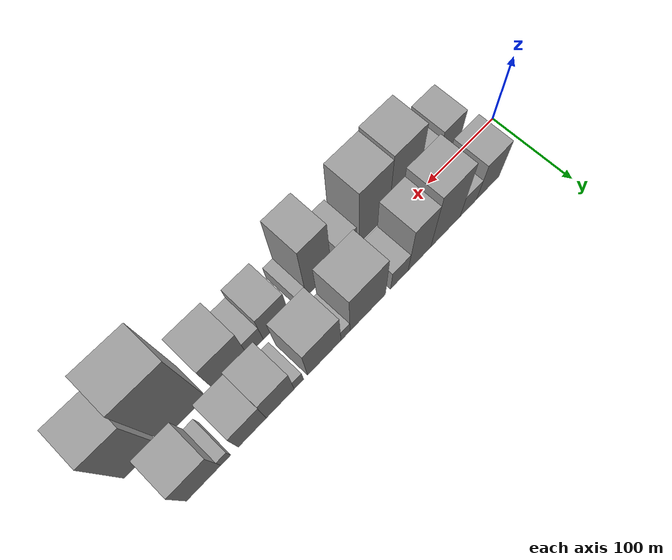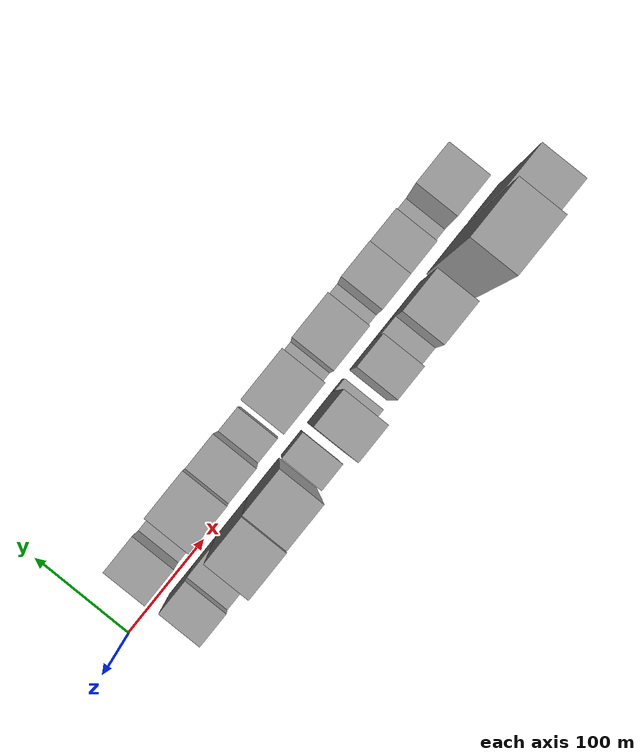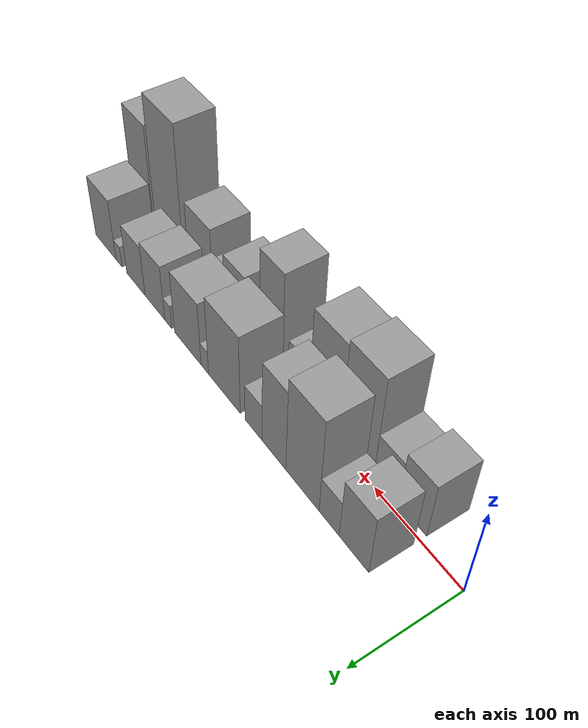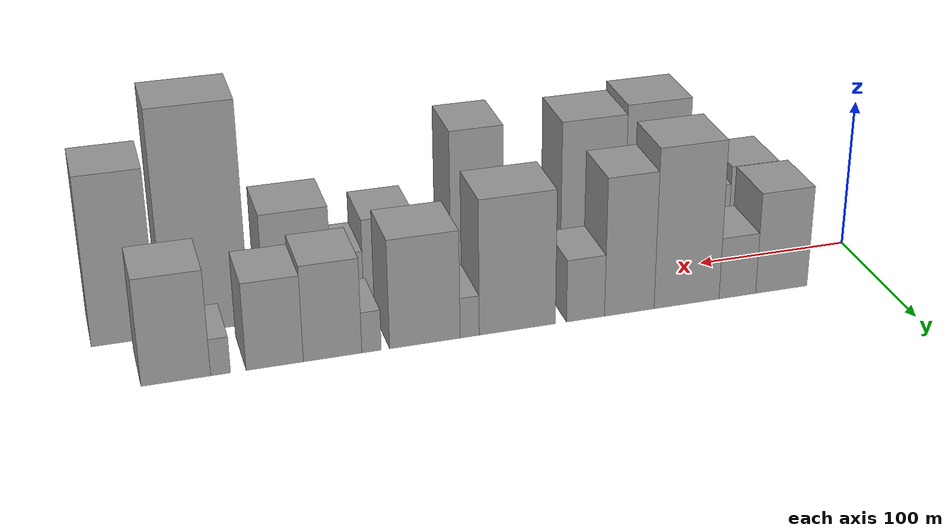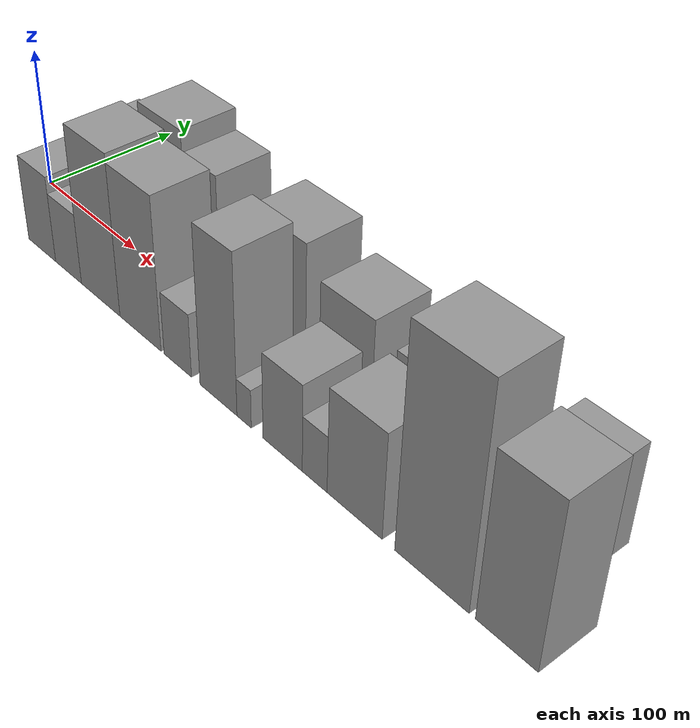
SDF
<sdf version="1.6">
 <world name="default">
  <scene>
   <sky><clouds><speed>12</speed></clouds></sky>
   <ambient>0.4 0.4 0.4 1</ambient>
   <background>0.7 0.7 0.7 1</background>
   <shadows>1</shadows>
  </scene>
  <gravity>0 0 -9.8066</gravity>
  <magnetic_field>6e-06 2.3e-05 -4.2e-05</magnetic_field>
  <physics default="0" name="default_physics" type="ode">
   <ode>
    <solver>
     <type>quick</type>
     <iters>10</iters>
     <sor>1.0</sor>
     <use_dynamic_moi_rescaling>0</use_dynamic_moi_rescaling>
    </solver>
    <constraints>
     <cfm>0</cfm>
     <erp>0.2</erp>
     <contact_max_correcting_vel>100</contact_max_correcting_vel>
     <contact_surface_layer>0.001</contact_surface_layer>
    </constraints>
   </ode>
   <max_step_size>0.004</max_step_size>
   <real_time_factor>1</real_time_factor>
   <real_time_update_rate>250</real_time_update_rate>
  </physics>
  <light name="sun" type="directional">
   <pose>0 0 10 0 0 0</pose>
   <diffuse>0.8 0.8 0.8 1</diffuse>
   <specular>0.2 0.2 0.2 1</specular>
   <attenuation>
    <range>1000</range>
    <constant>0.9</constant>
    <linear>0.01</linear>
    <quadratic>0.001</quadratic>
   </attenuation>
   <direction>-0.5 0.1 -0.9</direction>
  </light>
  <model name="building_1">
   <static>1</static>
   <pose>64.3945 26.0000 0 0.000000 0.000000 1.570796</pose>
   <link name="link">
    <pose>0 0 34.50 0 0 0</pose>
    <collision name="collision"><geometry><box><size>40.0000 34.7891 69.0000</size></box></geometry></collision>
    <visual name="visual">
     <cast_shadows>0</cast_shadows>
     <geometry><box><size>40.0000 34.7891 69.0000</size></box></geometry>
     <material>
      <script>
       <uri>model://grey_wall/materials/scripts</uri>
       <uri>model://grey_wall/materials/textures</uri>
       <name>vrc/grey_wall</name>
      </script>
     </material>
    </visual>
   </link>
  </model>
  <model name="building_2">
   <static>1</static>
   <pose>94.0296 26.0000 0 0.000000 0.000000 1.570796</pose>
   <link name="link">
    <pose>0 0 21.00 0 0 0</pose>
    <collision name="collision"><geometry><box><size>40.0000 24.4811 42.0000</size></box></geometry></collision>
    <visual name="visual">
     <cast_shadows>0</cast_shadows>
     <geometry><box><size>40.0000 24.4811 42.0000</size></box></geometry>
     <material>
      <script>
       <uri>model://grey_wall/materials/scripts</uri>
       <uri>model://grey_wall/materials/textures</uri>
       <name>vrc/grey_wall</name>
      </script>
     </material>
    </visual>
   </link>
  </model>
  <model name="building_3">
   <static>1</static>
   <pose>127.7271 26.0000 0 0.000000 0.000000 1.570796</pose>
   <link name="link">
    <pose>0 0 54.00 0 0 0</pose>
    <collision name="collision"><geometry><box><size>40.0000 42.9138 108.0000</size></box></geometry></collision>
    <visual name="visual">
     <cast_shadows>0</cast_shadows>
     <geometry><box><size>40.0000 42.9138 108.0000</size></box></geometry>
     <material>
      <script>
       <uri>model://grey_wall/materials/scripts</uri>
       <uri>model://grey_wall/materials/textures</uri>
       <name>vrc/grey_wall</name>
      </script>
     </material>
    </visual>
   </link>
  </model>
  <model name="building_4">
   <static>1</static>
   <pose>165.2172 26.0000 0 0.000000 0.000000 1.570796</pose>
   <link name="link">
    <pose>0 0 46.50 0 0 0</pose>
    <collision name="collision"><geometry><box><size>40.0000 32.0664 93.0000</size></box></geometry></collision>
    <visual name="visual">
     <cast_shadows>0</cast_shadows>
     <geometry><box><size>40.0000 32.0664 93.0000</size></box></geometry>
     <material>
      <script>
       <uri>model://grey_wall/materials/scripts</uri>
       <uri>model://grey_wall/materials/textures</uri>
       <name>vrc/grey_wall</name>
      </script>
     </material>
    </visual>
   </link>
  </model>
  <model name="building_5">
   <static>1</static>
   <pose>193.4105 26.0000 0 0.000000 0.000000 1.570796</pose>
   <link name="link">
    <pose>0 0 21.00 0 0 0</pose>
    <collision name="collision"><geometry><box><size>40.0000 24.3203 42.0000</size></box></geometry></collision>
    <visual name="visual">
     <cast_shadows>0</cast_shadows>
     <geometry><box><size>40.0000 24.3203 42.0000</size></box></geometry>
     <material>
      <script>
       <uri>model://grey_wall/materials/scripts</uri>
       <uri>model://grey_wall/materials/textures</uri>
       <name>vrc/grey_wall</name>
      </script>
     </material>
    </visual>
   </link>
  </model>
  <model name="building_6">
   <static>1</static>
   <pose>236.4170 26.0000 0 0.000000 0.000000 1.570796</pose>
   <link name="link">
    <pose>0 0 45.00 0 0 0</pose>
    <collision name="collision"><geometry><box><size>40.0000 47.6927 90.0000</size></box></geometry></collision>
    <visual name="visual">
     <cast_shadows>0</cast_shadows>
     <geometry><box><size>40.0000 47.6927 90.0000</size></box></geometry>
     <material>
      <script>
       <uri>model://grey_wall/materials/scripts</uri>
       <uri>model://grey_wall/materials/textures</uri>
       <name>vrc/grey_wall</name>
      </script>
     </material>
    </visual>
   </link>
  </model>
  <model name="building_7">
   <static>1</static>
   <pose>266.1805 26.0000 0 0.000000 0.000000 1.570796</pose>
   <link name="link">
    <pose>0 0 13.50 0 0 0</pose>
    <collision name="collision"><geometry><box><size>40.0000 11.8342 27.0000</size></box></geometry></collision>
    <visual name="visual">
     <cast_shadows>0</cast_shadows>
     <geometry><box><size>40.0000 11.8342 27.0000</size></box></geometry>
     <material>
      <script>
       <uri>model://grey_wall/materials/scripts</uri>
       <uri>model://grey_wall/materials/textures</uri>
       <name>vrc/grey_wall</name>
      </script>
     </material>
    </visual>
   </link>
  </model>
  <model name="building_8">
   <static>1</static>
   <pose>293.5687 26.0000 0 0.000000 0.000000 1.570796</pose>
   <link name="link">
    <pose>0 0 36.00 0 0 0</pose>
    <collision name="collision"><geometry><box><size>40.0000 42.9422 72.0000</size></box></geometry></collision>
    <visual name="visual">
     <cast_shadows>0</cast_shadows>
     <geometry><box><size>40.0000 42.9422 72.0000</size></box></geometry>
     <material>
      <script>
       <uri>model://grey_wall/materials/scripts</uri>
       <uri>model://grey_wall/materials/textures</uri>
       <name>vrc/grey_wall</name>
      </script>
     </material>
    </visual>
   </link>
  </model>
  <model name="building_9">
   <static>1</static>
   <pose>325.8712 26.0000 0 0.000000 0.000000 1.570796</pose>
   <link name="link">
    <pose>0 0 13.50 0 0 0</pose>
    <collision name="collision"><geometry><box><size>40.0000 11.6629 27.0000</size></box></geometry></collision>
    <visual name="visual">
     <cast_shadows>0</cast_shadows>
     <geometry><box><size>40.0000 11.6629 27.0000</size></box></geometry>
     <material>
      <script>
       <uri>model://grey_wall/materials/scripts</uri>
       <uri>model://grey_wall/materials/textures</uri>
       <name>vrc/grey_wall</name>
      </script>
     </material>
    </visual>
   </link>
  </model>
  <model name="building_10">
   <static>1</static>
   <pose>349.0239 26.0000 0 0.000000 0.000000 1.570796</pose>
   <link name="link">
    <pose>0 0 31.50 0 0 0</pose>
    <collision name="collision"><geometry><box><size>40.0000 34.6425 63.0000</size></box></geometry></collision>
    <visual name="visual">
     <cast_shadows>0</cast_shadows>
     <geometry><box><size>40.0000 34.6425 63.0000</size></box></geometry>
     <material>
      <script>
       <uri>model://grey_wall/materials/scripts</uri>
       <uri>model://grey_wall/materials/textures</uri>
       <name>vrc/grey_wall</name>
      </script>
     </material>
    </visual>
   </link>
  </model>
  <model name="building_11">
   <static>1</static>
   <pose>383.0467 26.0000 0 0.000000 0.000000 1.570796</pose>
   <link name="link">
    <pose>0 0 28.50 0 0 0</pose>
    <collision name="collision"><geometry><box><size>40.0000 33.4032 57.0000</size></box></geometry></collision>
    <visual name="visual">
     <cast_shadows>0</cast_shadows>
     <geometry><box><size>40.0000 33.4032 57.0000</size></box></geometry>
     <material>
      <script>
       <uri>model://grey_wall/materials/scripts</uri>
       <uri>model://grey_wall/materials/textures</uri>
       <name>vrc/grey_wall</name>
      </script>
     </material>
    </visual>
   </link>
  </model>
  <model name="building_12">
   <static>1</static>
   <pose>414.4743 26.0000 0 0.000000 0.000000 1.570796</pose>
   <link name="link">
    <pose>0 0 12.00 0 0 0</pose>
    <collision name="collision"><geometry><box><size>40.0000 11.4518 24.0000</size></box></geometry></collision>
    <visual name="visual">
     <cast_shadows>0</cast_shadows>
     <geometry><box><size>40.0000 11.4518 24.0000</size></box></geometry>
     <material>
      <script>
       <uri>model://grey_wall/materials/scripts</uri>
       <uri>model://grey_wall/materials/textures</uri>
       <name>vrc/grey_wall</name>
      </script>
     </material>
    </visual>
   </link>
  </model>
  <model name="building_13">
   <static>1</static>
   <pose>439.9525 26.0000 0 0.000000 0.000000 1.570796</pose>
   <link name="link">
    <pose>0 0 34.50 0 0 0</pose>
    <collision name="collision"><geometry><box><size>40.0000 39.5047 69.0000</size></box></geometry></collision>
    <visual name="visual">
     <cast_shadows>0</cast_shadows>
     <geometry><box><size>40.0000 39.5047 69.0000</size></box></geometry>
     <material>
      <script>
       <uri>model://grey_wall/materials/scripts</uri>
       <uri>model://grey_wall/materials/textures</uri>
       <name>vrc/grey_wall</name>
      </script>
     </material>
    </visual>
   </link>
  </model>
  <model name="building_14">
   <static>1</static>
   <pose>63.0424 -26.0000 0 0.000000 0.000000 1.570796</pose>
   <link name="link">
    <pose>0 0 31.50 0 0 0</pose>
    <collision name="collision"><geometry><box><size>40.0000 32.0847 63.0000</size></box></geometry></collision>
    <visual name="visual">
     <cast_shadows>0</cast_shadows>
     <geometry><box><size>40.0000 32.0847 63.0000</size></box></geometry>
     <material>
      <script>
       <uri>model://grey_wall/materials/scripts</uri>
       <uri>model://grey_wall/materials/textures</uri>
       <name>vrc/grey_wall</name>
      </script>
     </material>
    </visual>
   </link>
  </model>
  <model name="building_15">
   <static>1</static>
   <pose>93.8723 -26.0000 0 0.000000 0.000000 1.570796</pose>
   <link name="link">
    <pose>0 0 25.50 0 0 0</pose>
    <collision name="collision"><geometry><box><size>40.0000 29.5751 51.0000</size></box></geometry></collision>
    <visual name="visual">
     <cast_shadows>0</cast_shadows>
     <geometry><box><size>40.0000 29.5751 51.0000</size></box></geometry>
     <material>
      <script>
       <uri>model://grey_wall/materials/scripts</uri>
       <uri>model://grey_wall/materials/textures</uri>
       <name>vrc/grey_wall</name>
      </script>
     </material>
    </visual>
   </link>
  </model>
  <model name="building_16">
   <static>1</static>
   <pose>129.6067 -26.0000 0 0.000000 0.000000 1.570796</pose>
   <link name="link">
    <pose>0 0 57.00 0 0 0</pose>
    <collision name="collision"><geometry><box><size>40.0000 41.8939 114.0000</size></box></geometry></collision>
    <visual name="visual">
     <cast_shadows>0</cast_shadows>
     <geometry><box><size>40.0000 41.8939 114.0000</size></box></geometry>
     <material>
      <script>
       <uri>model://grey_wall/materials/scripts</uri>
       <uri>model://grey_wall/materials/textures</uri>
       <name>vrc/grey_wall</name>
      </script>
     </material>
    </visual>
   </link>
  </model>
  <model name="building_17">
   <static>1</static>
   <pose>171.5663 -26.0000 0 0.000000 0.000000 1.570796</pose>
   <link name="link">
    <pose>0 0 54.00 0 0 0</pose>
    <collision name="collision"><geometry><box><size>40.0000 42.0252 108.0000</size></box></geometry></collision>
    <visual name="visual">
     <cast_shadows>0</cast_shadows>
     <geometry><box><size>40.0000 42.0252 108.0000</size></box></geometry>
     <material>
      <script>
       <uri>model://grey_wall/materials/scripts</uri>
       <uri>model://grey_wall/materials/textures</uri>
       <name>vrc/grey_wall</name>
      </script>
     </material>
    </visual>
   </link>
  </model>
  <model name="building_18">
   <static>1</static>
   <pose>208.8140 -26.0000 0 0.000000 0.000000 1.570796</pose>
   <link name="link">
    <pose>0 0 22.50 0 0 0</pose>
    <collision name="collision"><geometry><box><size>40.0000 26.4703 45.0000</size></box></geometry></collision>
    <visual name="visual">
     <cast_shadows>0</cast_shadows>
     <geometry><box><size>40.0000 26.4703 45.0000</size></box></geometry>
     <material>
      <script>
       <uri>model://grey_wall/materials/scripts</uri>
       <uri>model://grey_wall/materials/textures</uri>
       <name>vrc/grey_wall</name>
      </script>
     </material>
    </visual>
   </link>
  </model>
  <model name="building_19">
   <static>1</static>
   <pose>246.8575 -26.0000 0 0.000000 0.000000 1.570796</pose>
   <link name="link">
    <pose>0 0 55.50 0 0 0</pose>
    <collision name="collision"><geometry><box><size>40.0000 33.6168 111.0000</size></box></geometry></collision>
    <visual name="visual">
     <cast_shadows>0</cast_shadows>
     <geometry><box><size>40.0000 33.6168 111.0000</size></box></geometry>
     <material>
      <script>
       <uri>model://grey_wall/materials/scripts</uri>
       <uri>model://grey_wall/materials/textures</uri>
       <name>vrc/grey_wall</name>
      </script>
     </material>
    </visual>
   </link>
  </model>
  <model name="building_20">
   <static>1</static>
   <pose>269.9512 -26.0000 0 0.000000 0.000000 1.570796</pose>
   <link name="link">
    <pose>0 0 13.50 0 0 0</pose>
    <collision name="collision"><geometry><box><size>40.0000 12.5706 27.0000</size></box></geometry></collision>
    <visual name="visual">
     <cast_shadows>0</cast_shadows>
     <geometry><box><size>40.0000 12.5706 27.0000</size></box></geometry>
     <material>
      <script>
       <uri>model://grey_wall/materials/scripts</uri>
       <uri>model://grey_wall/materials/textures</uri>
       <name>vrc/grey_wall</name>
      </script>
     </material>
    </visual>
   </link>
  </model>
  <model name="building_21">
   <static>1</static>
   <pose>302.5528 -26.0000 0 0.000000 0.000000 1.570796</pose>
   <link name="link">
    <pose>0 0 30.00 0 0 0</pose>
    <collision name="collision"><geometry><box><size>40.0000 32.6326 60.0000</size></box></geometry></collision>
    <visual name="visual">
     <cast_shadows>0</cast_shadows>
     <geometry><box><size>40.0000 32.6326 60.0000</size></box></geometry>
     <material>
      <script>
       <uri>model://grey_wall/materials/scripts</uri>
       <uri>model://grey_wall/materials/textures</uri>
       <name>vrc/grey_wall</name>
      </script>
     </material>
    </visual>
   </link>
  </model>
  <model name="building_22">
   <static>1</static>
   <pose>328.7143 -26.0000 0 0.000000 0.000000 1.570796</pose>
   <link name="link">
    <pose>0 0 19.50 0 0 0</pose>
    <collision name="collision"><geometry><box><size>40.0000 19.6904 39.0000</size></box></geometry></collision>
    <visual name="visual">
     <cast_shadows>0</cast_shadows>
     <geometry><box><size>40.0000 19.6904 39.0000</size></box></geometry>
     <material>
      <script>
       <uri>model://grey_wall/materials/scripts</uri>
       <uri>model://grey_wall/materials/textures</uri>
       <name>vrc/grey_wall</name>
      </script>
     </material>
    </visual>
   </link>
  </model>
  <model name="building_23">
   <static>1</static>
   <pose>359.3304 -26.0000 0 0.000000 0.000000 1.570796</pose>
   <link name="link">
    <pose>0 0 36.00 0 0 0</pose>
    <collision name="collision"><geometry><box><size>40.0000 41.5418 72.0000</size></box></geometry></collision>
    <visual name="visual">
     <cast_shadows>0</cast_shadows>
     <geometry><box><size>40.0000 41.5418 72.0000</size></box></geometry>
     <material>
      <script>
       <uri>model://grey_wall/materials/scripts</uri>
       <uri>model://grey_wall/materials/textures</uri>
       <name>vrc/grey_wall</name>
      </script>
     </material>
    </visual>
   </link>
  </model>
  <model name="building_24">
   <static>1</static>
   <pose>414.5254 -26.0000 0 0.000000 0.000000 1.570796</pose>
   <link name="link">
    <pose>0 0 73.50 0 0 0</pose>
    <collision name="collision"><geometry><box><size>40.0000 50.8483 147.0000</size></box></geometry></collision>
    <visual name="visual">
     <cast_shadows>0</cast_shadows>
     <geometry><box><size>40.0000 50.8483 147.0000</size></box></geometry>
     <material>
      <script>
       <uri>model://grey_wall/materials/scripts</uri>
       <uri>model://grey_wall/materials/textures</uri>
       <name>vrc/grey_wall</name>
      </script>
     </material>
    </visual>
   </link>
  </model>
  <model name="building_25">
   <static>1</static>
   <pose>463.5818 -26.0000 0 0.000000 0.000000 1.570796</pose>
   <link name="link">
    <pose>0 0 55.50 0 0 0</pose>
    <collision name="collision"><geometry><box><size>40.0000 39.2645 111.0000</size></box></geometry></collision>
    <visual name="visual">
     <cast_shadows>0</cast_shadows>
     <geometry><box><size>40.0000 39.2645 111.0000</size></box></geometry>
     <material>
      <script>
       <uri>model://grey_wall/materials/scripts</uri>
       <uri>model://grey_wall/materials/textures</uri>
       <name>vrc/grey_wall</name>
      </script>
     </material>
    </visual>
   </link>
  </model>
 </world>
</sdf>
